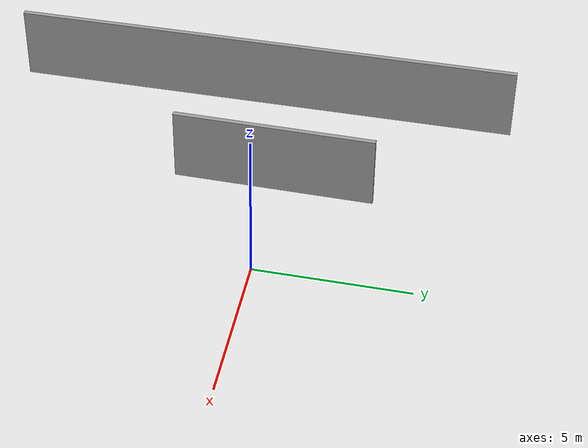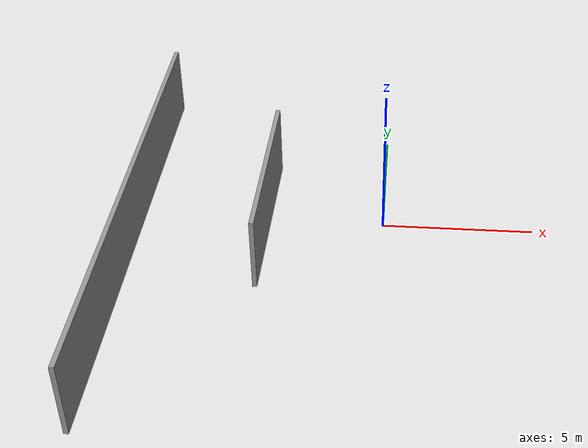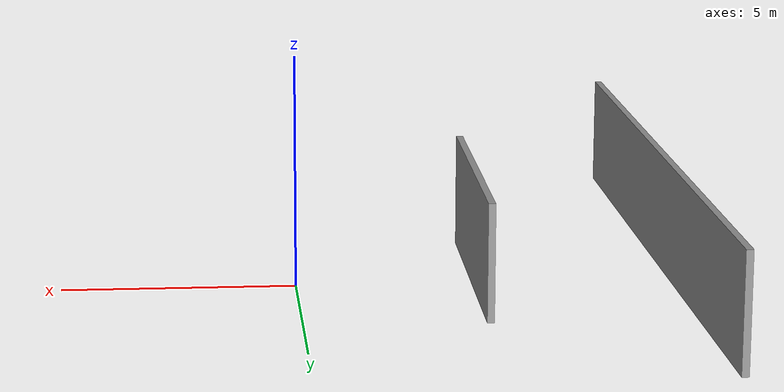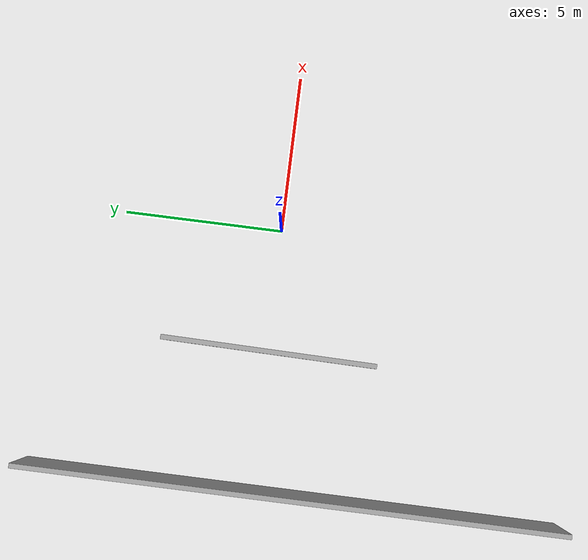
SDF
<sdf version="1.6">
 <model name="Ramp">
  <pose>-3.19363 -1.29296 0 0 -0 0</pose>
  <link name="Wall_1">
   <collision name="Wall_1_Collision">
    <geometry><box><size>6.5 0.15 2.5</size></box></geometry>
    <pose>0 0 1.25 0 -0 0</pose>
   </collision>
   <visual name="Wall_1_Visual">
    <pose>0 0 1.25 0 -0 0</pose>
    <geometry><box><size>6.5 0.15 2.5</size></box></geometry>
    <material>
     <script><uri>file://media/materials/scripts/gazebo.material</uri><name>Gazebo/Grey</name></script>
     <ambient>1 1 1 1</ambient>
    </material>
   </visual>
   <pose>-0.667284 1.17796 0 0 -0 1.55791</pose>
  </link>
  <link name="Wall_8">
   <collision name="Wall_8_Collision">
    <geometry><box><size>16.75 0.15 2.5</size></box></geometry>
    <pose>0 0 1.25 0 -0 0</pose>
   </collision>
   <visual name="Wall_8_Visual">
    <pose>0 0 1.25 0 -0 0</pose>
    <geometry><box><size>16.75 0.15 2.5</size></box></geometry>
    <material>
     <script><uri>file://media/materials/scripts/gazebo.material</uri><name>Gazebo/Grey</name></script>
     <ambient>1 1 1 1</ambient>
    </material>
   </visual>
   <pose>-4.96612 0.000348 0 0 0 -1.5708</pose>
  </link>
  <static>1</static>
 </model>
</sdf>
